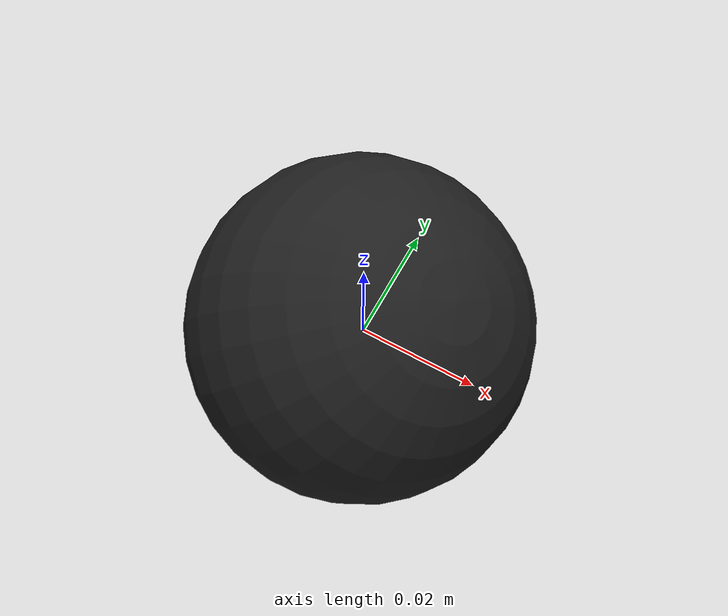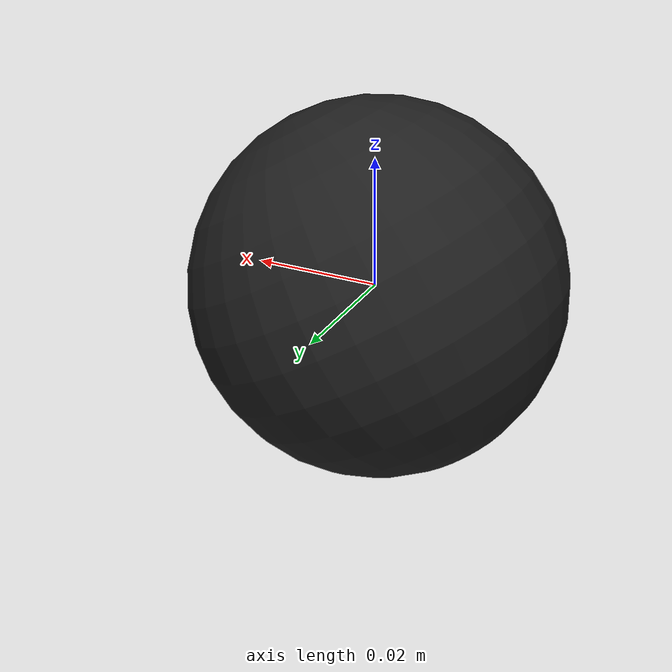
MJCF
<mujoco model="billiards">
  <compiler angle="radian"/>
  <default>
    <default class="visual">
      <geom group="1" type="mesh" contype="0" conaffinity="0"/>
    </default>
    <default class="collision">
      <geom group="0" type="mesh" solref="0.001 1" solimp="0.998 0.998 0.001"/>
    </default>
  </default>
  <asset>
    <texture name="white" type="2d" file="./visual/material_4.png"/>
    <texture name="solid_1" type="2d" file="./visual/material_15.png"/>
    <texture name="solid_2" type="2d" file="./visual/material_13.png"/>
    <texture name="solid_3" type="2d" file="./visual/material_14.png"/>
    <texture name="solid_4" type="2d" file="./visual/material_11.png"/>
    <texture name="solid_5" type="2d" file="./visual/material_12.png"/>
    <texture name="solid_6" type="2d" file="./visual/material_10.png"/>
    <texture name="solid_7" type="2d" file="./visual/material_3.png"/>
    <texture name="black_8" type="2d" file="./visual/material_0.png"/>
    <texture name="striped_9" type="2d" file="./visual/material_2.png"/>
    <texture name="striped_10" type="2d" file="./visual/material_1.png"/>
    <texture name="striped_11" type="2d" file="./visual/material_7.png"/>
    <texture name="striped_12" type="2d" file="./visual/material_5.png"/>
    <texture name="striped_13" type="2d" file="./visual/material_9.png"/>
    <texture name="striped_14" type="2d" file="./visual/material_6.png"/>
    <texture name="striped_15" type="2d" file="./visual/material_8.png"/>
    <material name="white" texture="white"/>
    <material name="solid_1" texture="solid_1"/>
    <material name="solid_2" texture="solid_2"/>
    <material name="solid_3" texture="solid_3"/>
    <material name="solid_4" texture="solid_4"/>
    <material name="solid_5" texture="solid_5"/>
    <material name="solid_6" texture="solid_6"/>
    <material name="solid_7" texture="solid_7"/>
    <material name="black_8" texture="black_8"/>
    <material name="striped_9" texture="striped_9"/>
    <material name="striped_10" texture="striped_10"/>
    <material name="striped_11" texture="striped_11"/>
    <material name="striped_12" texture="striped_12"/>
    <material name="striped_13" texture="striped_13"/>
    <material name="striped_14" texture="striped_14"/>
    <material name="striped_15" texture="striped_15"/>

    <material name="snooker_white" reflectance="0.2" rgba="0.8 0.1 0.1 1"/>
    <material name="snooker_red" reflectance="0.2" rgba="0.8 0.1 0.1 1"/>
    <material name="snooker_yellow" reflectance="0.2" rgba="1 0.8 0.15 1"/>
    <material name="snooker_green" reflectance="0.2" rgba="0.22  0.5 0.3 1"/>
    <material name="snooker_brown" reflectance="0.2" rgba="0.38 0.28 0.16 1"/>
    <material name="snooker_blue" reflectance="0.2" rgba="0.33 0.4 0.7 1"/>
    <material name="snooker_pink" reflectance="0.2" rgba="0.9 0.55 0.5 1"/>
    <material name="snooker_black" reflectance="0.2" rgba="0.1 0.15 0.15 1"/>

    <mesh name="ball_vis" file="./visual/billiardsobj.obj" scale="0.0015 0.0015 0.0015"/>
    <mesh name="ball_col" file="./collision/billiardsobj_collision_0.obj" scale="0.0015 0.0015 0.0015"/>
  </asset>
  <worldbody>
    <body>
      <body name="object">
        <geom material="black_8" mesh="ball_vis" class="visual" />
        <geom mesh="ball_col" rgba="0 0 0 0" class="collision" />
      </body>
      <site rgba="0 0 0 0" size="0.005" pos="0 0 -0.03" name="bottom_site"/>
      <site rgba="0 0 0 0" size="0.005" pos="0 0 0.03" name="top_site"/>
      <site rgba="0 0 0 0" size="0.005" pos="0.04 0.04 0" name="horizontal_radius_site"/>
    </body>
  </worldbody>
</mujoco>
